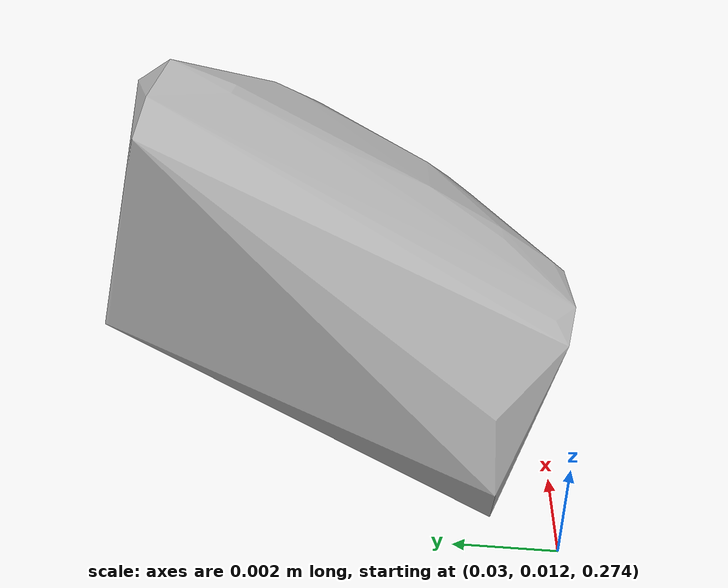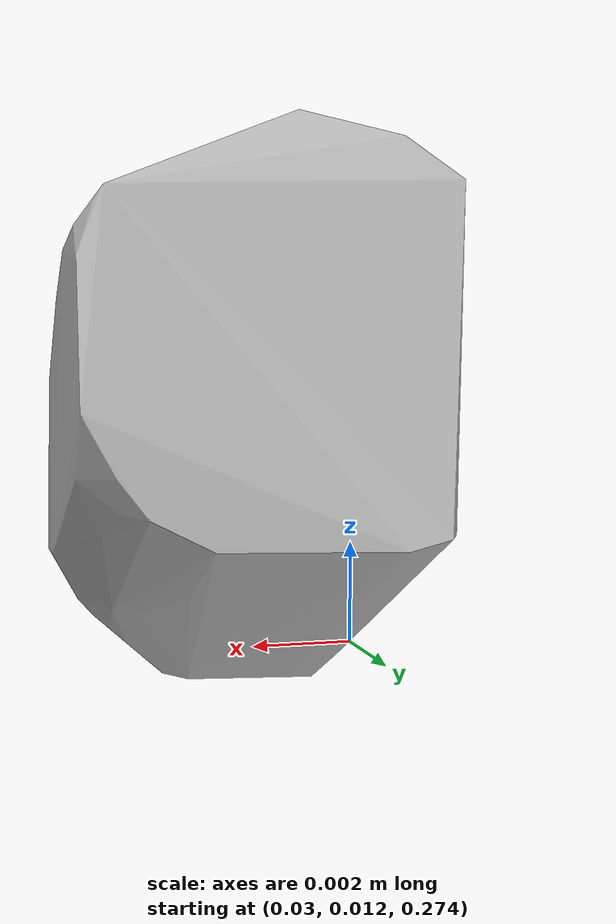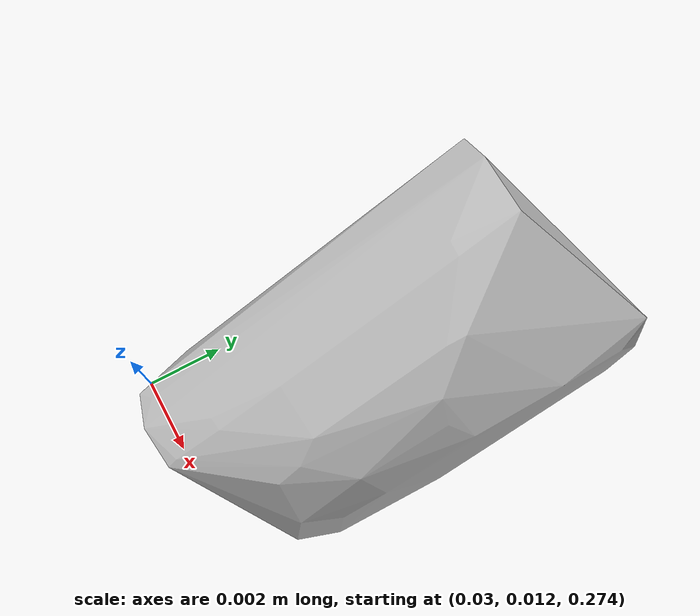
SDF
<?xml version="1.0"?>
<sdf version="1.7">
  <model name="vascular_partexport039">
    <link name="vascular_partexport039_body">
      <visual name="vascular_partexport039_visual">
        <geometry>
          <mesh>
            <uri>vascular_partexport039.obj</uri>
          </mesh>
        </geometry>
      </visual>
      <collision name="vascular_partexport039_collision">
        <geometry>
          <mesh>
            <uri>vascular_partexport039.obj</uri>
          </mesh>
        </geometry>
      </collision>
    </link>
    <frame name="vascular_partexport039_center">
      <pose relative_to="vascular_partexport039_body">0 0 0 0 0 0</pose>
    </frame>
  </model>
</sdf>
